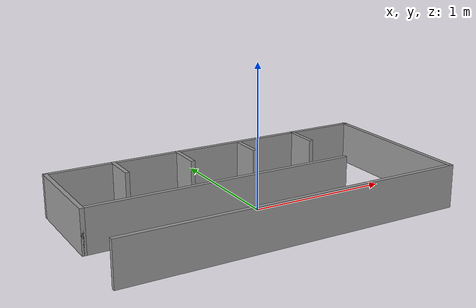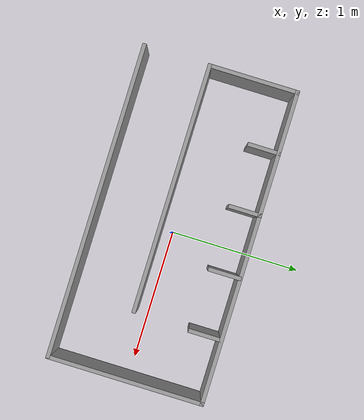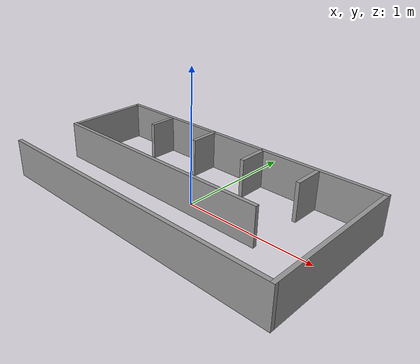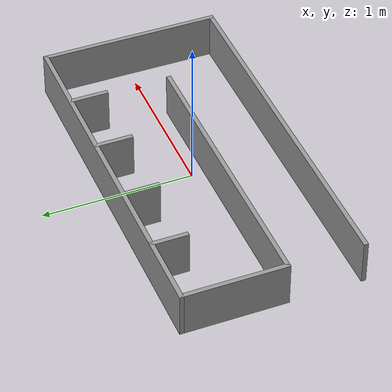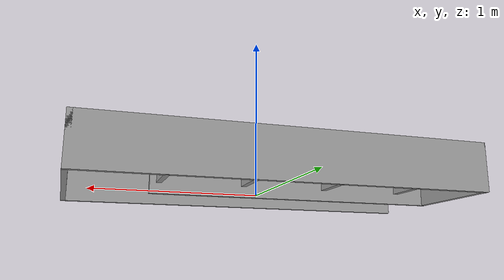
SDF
<?xml version='1.0'?>
<sdf version='1.7'>
  <model name='wrg.world'>
    <pose>-0.058 -0.011 0 0 -0 0</pose>
    <link name='Wall_0'>
      <collision name='Wall_0_Collision'>
        <geometry>
          <box>
            <size>2.4 0.03 0.3</size>
          </box>
        </geometry>
        <pose>0 0 0.15 0 -0 0</pose>
      </collision>
      <visual name='Wall_0_Visual'>
        <pose>0 0 0.15 0 -0 0</pose>
        <geometry>
          <box>
            <size>2.4 0.03 0.3</size>
          </box>
        </geometry>
        <material>
          <script>
            <uri>file://media/materials/scripts/gazebo.material</uri>
            <name>Gazebo/Grey</name>
          </script>
          <ambient>1 1 1 1</ambient>
        </material>
        <meta>
          <layer>0</layer>
        </meta>
      </visual>
      <pose>-0 0.585 0 0 -0 0</pose>
    </link>
    <link name='Wall_11'>
      <collision name='Wall_11_Collision'>
        <geometry>
          <box>
            <size>0.25 0.03 0.3</size>
          </box>
        </geometry>
        <pose>0 0 0.15 0 -0 0</pose>
      </collision>
      <visual name='Wall_11_Visual'>
        <pose>0 0 0.15 0 -0 0</pose>
        <geometry>
          <box>
            <size>0.25 0.03 0.3</size>
          </box>
        </geometry>
        <material>
          <script>
            <uri>file://media/materials/scripts/gazebo.material</uri>
            <name>Gazebo/Grey</name>
          </script>
          <ambient>1 1 1 1</ambient>
        </material>
        <meta>
          <layer>0</layer>
        </meta>
      </visual>
      <pose>-0.719 0.474 0 0 -0 -1.5708</pose>
    </link>
    <link name='Wall_13'>
      <collision name='Wall_13_Collision'>
        <geometry>
          <box>
            <size>0.25 0.03 0.3</size>
          </box>
        </geometry>
        <pose>0 0 0.15 0 -0 0</pose>
      </collision>
      <visual name='Wall_13_Visual'>
        <pose>0 0 0.15 0 -0 0</pose>
        <geometry>
          <box>
            <size>0.25 0.03 0.3</size>
          </box>
        </geometry>
        <material>
          <script>
            <uri>file://media/materials/scripts/gazebo.material</uri>
            <name>Gazebo/Grey</name>
          </script>
          <ambient>1 1 1 1</ambient>
        </material>
        <meta>
          <layer>0</layer>
        </meta>
      </visual>
      <pose>-0.247 0.473 0 0 -0 -1.5708</pose>
    </link>
    <link name='Wall_15'>
      <collision name='Wall_15_Collision'>
        <geometry>
          <box>
            <size>0.25 0.03 0.3</size>
          </box>
        </geometry>
        <pose>0 0 0.15 0 -0 0</pose>
      </collision>
      <visual name='Wall_15_Visual'>
        <pose>0 0 0.15 0 -0 0</pose>
        <geometry>
          <box>
            <size>0.25 0.03 0.3</size>
          </box>
        </geometry>
        <material>
          <script>
            <uri>file://media/materials/scripts/gazebo.material</uri>
            <name>Gazebo/Grey</name>
          </script>
          <ambient>1 1 1 1</ambient>
        </material>
        <meta>
          <layer>0</layer>
        </meta>
      </visual>
      <pose>0.234269 0.466107 0 0 -0 -1.5708</pose>
    </link>
    <link name='Wall_17'>
      <collision name='Wall_17_Collision'>
        <geometry>
          <box>
            <size>0.25 0.03 0.3</size>
          </box>
        </geometry>
        <pose>0 0 0.15 0 -0 0</pose>
      </collision>
      <visual name='Wall_17_Visual'>
        <pose>0 0 0.15 0 -0 0</pose>
        <geometry>
          <box>
            <size>0.25 0.03 0.3</size>
          </box>
        </geometry>
        <material>
          <script>
            <uri>file://media/materials/scripts/gazebo.material</uri>
            <name>Gazebo/Grey</name>
          </script>
          <ambient>1 1 1 1</ambient>
        </material>
        <meta>
          <layer>0</layer>
        </meta>
      </visual>
      <pose>0.702528 0.459225 0 0 -0 -1.5708</pose>
    </link>
    <link name='Wall_2'>
      <collision name='Wall_2_Collision'>
        <geometry>
          <box>
            <size>0.7 0.03 0.3</size>
          </box>
        </geometry>
        <pose>0 0 0.15 0 -0 0</pose>
      </collision>
      <visual name='Wall_2_Visual'>
        <pose>0 0 0.15 0 -0 0</pose>
        <geometry>
          <box>
            <size>0.7 0.03 0.3</size>
          </box>
        </geometry>
        <material>
          <script>
            <uri>file://media/materials/scripts/gazebo.material</uri>
            <name>Gazebo/Grey</name>
          </script>
          <ambient>1 1 1 1</ambient>
        </material>
        <meta>
          <layer>0</layer>
        </meta>
      </visual>
      <pose>-1.185 0.25 0 0 -0 -1.5708</pose>
    </link>
    <link name='Wall_4'>
      <collision name='Wall_4_Collision'>
        <geometry>
          <box>
            <size>1.2 0.03 0.3</size>
          </box>
        </geometry>
        <pose>0 0 0.15 0 -0 0</pose>
      </collision>
      <visual name='Wall_4_Visual'>
        <pose>0 0 0.15 0 -0 0</pose>
        <geometry>
          <box>
            <size>1.2 0.03 0.3</size>
          </box>
        </geometry>
        <material>
          <script>
            <uri>file://media/materials/scripts/gazebo.material</uri>
            <name>Gazebo/Grey</name>
          </script>
          <ambient>1 1 1 1</ambient>
        </material>
        <meta>
          <layer>0</layer>
        </meta>
      </visual>
      <pose>1.185 -0 0 0 -0 -1.5708</pose>
    </link>
    <link name='Wall_6'>
      <collision name='Wall_6_Collision'>
        <geometry>
          <box>
            <size>2.4 0.03 0.3</size>
          </box>
        </geometry>
        <pose>0 0 0.15 0 -0 0</pose>
      </collision>
      <visual name='Wall_6_Visual'>
        <pose>0 0 0.15 0 -0 0</pose>
        <geometry>
          <box>
            <size>2.4 0.03 0.3</size>
          </box>
        </geometry>
        <material>
          <script>
            <uri>file://media/materials/scripts/gazebo.material</uri>
            <name>Gazebo/Grey</name>
          </script>
          <ambient>1 1 1 1</ambient>
        </material>
        <meta>
          <layer>0</layer>
        </meta>
      </visual>
      <pose>-0 -0.585 0 0 -0 3.14159</pose>
    </link>
    <link name='Wall_9'>
      <collision name='Wall_9_Collision'>
        <geometry>
          <box>
            <size>1.9 0.03 0.3</size>
          </box>
        </geometry>
        <pose>0 0 0.15 0 -0 0</pose>
      </collision>
      <visual name='Wall_9_Visual'>
        <pose>0 0 0.15 0 -0 0</pose>
        <geometry>
          <box>
            <size>1.9 0.03 0.3</size>
          </box>
        </geometry>
        <material>
          <script>
            <uri>file://media/materials/scripts/gazebo.material</uri>
            <name>Gazebo/Grey</name>
          </script>
          <ambient>1 1 1 1</ambient>
        </material>
        <meta>
          <layer>0</layer>
        </meta>
      </visual>
      <pose>-0.25 -0.085 0 0 -0 0</pose>
    </link>
    <static>1</static>
  </model>
</sdf>
